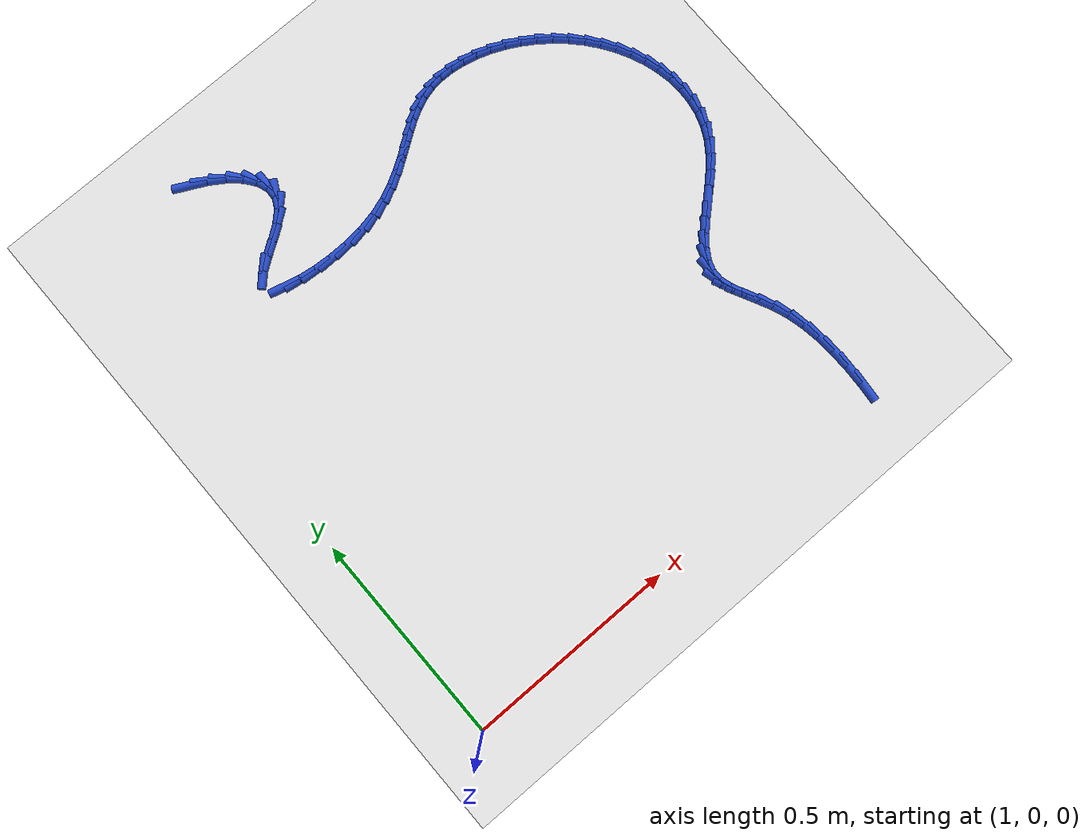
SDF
<sdf version="1.6">
 <world name="default">
  <model name="ground_plane">
   <static>1</static>
   <link name="link">
    <collision name="collision">
     <geometry><plane><normal>0 0 1</normal><size>100 100</size></plane></geometry>
     <surface><friction><ode><mu>100</mu><mu2>50</mu2></ode></friction></surface>
    </collision>
    <visual name="visual">
     <cast_shadows>0</cast_shadows>
     <geometry><plane><normal>0 0 1</normal><size>100 100</size></plane></geometry>
     <material>
      <script><uri>file://media/materials/scripts/gazebo.material</uri><name>Gazebo/WhiteGlow</name></script>
     </material>
    </visual>
   </link>
  </model>
  <model name="line">
   <link name="link_66">
    <pose>1.268315445558432 1.3236131255288703 0.01 0 1.57 -0.4637221920028351</pose>
    <collision name="collision">
     <geometry><cylinder><radius>0.01</radius><length>0.08</length></cylinder></geometry>
    </collision>
    <visual name="visual">
     <material>
      <script><name>Gazebo/Blue</name><uri>file://media/materials/scripts/gazebo.material</uri></script>
     </material>
     <geometry><cylinder><radius>0.01</radius><length>0.08</length></cylinder></geometry>
    </visual>
   </link>
   <link name="link_67">
    <pose>1.3068979011637158 1.3043183005978736 0.01 0 1.57 -0.5819282211173425</pose>
    <collision name="collision">
     <geometry><cylinder><radius>0.01</radius><length>0.08</length></cylinder></geometry>
    </collision>
    <visual name="visual">
     <material>
      <script><name>Gazebo/Blue</name><uri>file://media/materials/scripts/gazebo.material</uri></script>
     </material>
     <geometry><cylinder><radius>0.01</radius><length>0.08</length></cylinder></geometry>
    </visual>
   </link>
   <link name="link_68">
    <pose>1.3408913819317683 1.2819530432261421 0.01 0 1.57 -0.7256255597616942</pose>
    <collision name="collision">
     <geometry><cylinder><radius>0.01</radius><length>0.08</length></cylinder></geometry>
    </collision>
    <visual name="visual">
     <material>
      <script><name>Gazebo/Blue</name><uri>file://media/materials/scripts/gazebo.material</uri></script>
     </material>
     <geometry><cylinder><radius>0.01</radius><length>0.08</length></cylinder></geometry>
    </visual>
   </link>
   <link name="link_69">
    <pose>1.368651575350882 1.2573277982209072 0.01 0 1.57 -0.9193293286810896</pose>
    <collision name="collision">
     <geometry><cylinder><radius>0.01</radius><length>0.08</length></cylinder></geometry>
    </collision>
    <visual name="visual">
     <material>
      <script><name>Gazebo/Blue</name><uri>file://media/materials/scripts/gazebo.material</uri></script>
     </material>
     <geometry><cylinder><radius>0.01</radius><length>0.08</length></cylinder></geometry>
    </visual>
   </link>
   <link name="link_70">
    <pose>1.3885341689093513 1.2312530103893997 0.01 0 1.57 -1.2008175109434216</pose>
    <collision name="collision">
     <geometry><cylinder><radius>0.01</radius><length>0.08</length></cylinder></geometry>
    </collision>
    <visual name="visual">
     <material>
      <script><name>Gazebo/Blue</name><uri>file://media/materials/scripts/gazebo.material</uri></script>
     </material>
     <geometry><cylinder><radius>0.01</radius><length>0.08</length></cylinder></geometry>
    </visual>
   </link>
   <link name="link_71">
    <pose>1.398894850095469 1.2045391245388521 0.01 0 1.57 1.5404564820813893</pose>
    <collision name="collision">
     <geometry><cylinder><radius>0.01</radius><length>0.08</length></cylinder></geometry>
    </collision>
    <visual name="visual">
     <material>
      <script><name>Gazebo/Blue</name><uri>file://media/materials/scripts/gazebo.material</uri></script>
     </material>
     <geometry><cylinder><radius>0.01</radius><length>0.08</length></cylinder></geometry>
    </visual>
   </link>
   <link name="link_72">
    <pose>1.3980893063975288 1.177996585476495 0.01 0 1.57 1.0839216833575656</pose>
    <collision name="collision">
     <geometry><cylinder><radius>0.01</radius><length>0.08</length></cylinder></geometry>
    </collision>
    <visual name="visual">
     <material>
      <script><name>Gazebo/Blue</name><uri>file://media/materials/scripts/gazebo.material</uri></script>
     </material>
     <geometry><cylinder><radius>0.01</radius><length>0.08</length></cylinder></geometry>
    </visual>
   </link>
   <link name="link_73">
    <pose>1.3845534648951567 1.1524273644816105 0.01 0 1.57 0.7698544340722336</pose>
    <collision name="collision">
     <geometry><cylinder><radius>0.01</radius><length>0.08</length></cylinder></geometry>
    </collision>
    <visual name="visual">
     <material>
      <script><name>Gazebo/Blue</name><uri>file://media/materials/scripts/gazebo.material</uri></script>
     </material>
     <geometry><cylinder><radius>0.01</radius><length>0.08</length></cylinder></geometry>
    </visual>
   </link>
   <link name="link_74">
    <pose>1.3596854088271464 1.128320620759216 0.01 0 1.57 0.6282810121195611</pose>
    <collision name="collision">
     <geometry><cylinder><radius>0.01</radius><length>0.08</length></cylinder></geometry>
    </collision>
    <visual name="visual">
     <material>
      <script><name>Gazebo/Blue</name><uri>file://media/materials/scripts/gazebo.material</uri></script>
     </material>
     <geometry><cylinder><radius>0.01</radius><length>0.08</length></cylinder></geometry>
    </visual>
   </link>
   <link name="link_75">
    <pose>1.3286426397932507 1.1057685082950444 0.01 0 1.57 0.5818702681730475</pose>
    <collision name="collision">
     <geometry><cylinder><radius>0.01</radius><length>0.08</length></cylinder></geometry>
    </collision>
    <visual name="visual">
     <material>
      <script><name>Gazebo/Blue</name><uri>file://media/materials/scripts/gazebo.material</uri></script>
     </material>
     <geometry><cylinder><radius>0.01</radius><length>0.08</length></cylinder></geometry>
    </visual>
   </link>
   <link name="link_76">
    <pose>1.2968251964004343 1.0848375684804066 0.01 0 1.57 0.6158601635645772</pose>
    <collision name="collision">
     <geometry><cylinder><radius>0.01</radius><length>0.08</length></cylinder></geometry>
    </collision>
    <visual name="visual">
     <material>
      <script><name>Gazebo/Blue</name><uri>file://media/materials/scripts/gazebo.material</uri></script>
     </material>
     <geometry><cylinder><radius>0.01</radius><length>0.08</length></cylinder></geometry>
    </visual>
   </link>
   <link name="link_77">
    <pose>1.2696331172556623 1.0655943427066161 0.01 0 1.57 0.7946977954095454</pose>
    <collision name="collision">
     <geometry><cylinder><radius>0.01</radius><length>0.08</length></cylinder></geometry>
    </collision>
    <visual name="visual">
     <material>
      <script><name>Gazebo/Blue</name><uri>file://media/materials/scripts/gazebo.material</uri></script>
     </material>
     <geometry><cylinder><radius>0.01</radius><length>0.08</length></cylinder></geometry>
    </visual>
   </link>
   <link name="link_81">
    <pose>1.2867881492627735 1.0075640627421238 0.01 0 1.57 -0.2519943361886863</pose>
    <collision name="collision">
     <geometry><cylinder><radius>0.01</radius><length>0.08</length></cylinder></geometry>
    </collision>
    <visual name="visual">
     <material>
      <script><name>Gazebo/Blue</name><uri>file://media/materials/scripts/gazebo.material</uri></script>
     </material>
     <geometry><cylinder><radius>0.01</radius><length>0.08</length></cylinder></geometry>
    </visual>
   </link>
   <link name="link_82">
    <pose>1.3205259232640507 0.9988776867226582 0.01 0 1.57 -0.14263637030431697</pose>
    <collision name="collision">
     <geometry><cylinder><radius>0.01</radius><length>0.08</length></cylinder></geometry>
    </collision>
    <visual name="visual">
     <material>
      <script><name>Gazebo/Blue</name><uri>file://media/materials/scripts/gazebo.material</uri></script>
     </material>
     <geometry><cylinder><radius>0.01</radius><length>0.08</length></cylinder></geometry>
    </visual>
   </link>
   <link name="link_83">
    <pose>1.361012166989997 0.9930633914120724 0.01 0 1.57 -0.0597396892860879</pose>
    <collision name="collision">
     <geometry><cylinder><radius>0.01</radius><length>0.08</length></cylinder></geometry>
    </collision>
    <visual name="visual">
     <material>
      <script><name>Gazebo/Blue</name><uri>file://media/materials/scripts/gazebo.material</uri></script>
     </material>
     <geometry><cylinder><radius>0.01</radius><length>0.08</length></cylinder></geometry>
    </visual>
   </link>
   <link name="link_84">
    <pose>1.4056050601622758 0.9903962522185646 0.01 0 1.57 0.016393009757000095</pose>
    <collision name="collision">
     <geometry><cylinder><radius>0.01</radius><length>0.08</length></cylinder></geometry>
    </collision>
    <visual name="visual">
     <material>
      <script><name>Gazebo/Blue</name><uri>file://media/materials/scripts/gazebo.material</uri></script>
     </material>
     <geometry><cylinder><radius>0.01</radius><length>0.08</length></cylinder></geometry>
    </visual>
   </link>
   <link name="link_85">
    <pose>1.4516627825025488 0.9911513445503334 0.01 0 1.57 0.0988816015030931</pose>
    <collision name="collision">
     <geometry><cylinder><radius>0.01</radius><length>0.08</length></cylinder></geometry>
    </collision>
    <visual name="visual">
     <material>
      <script><name>Gazebo/Blue</name><uri>file://media/materials/scripts/gazebo.material</uri></script>
     </material>
     <geometry><cylinder><radius>0.01</radius><length>0.08</length></cylinder></geometry>
    </visual>
   </link>
   <link name="link_86">
    <pose>1.4965435137324767 0.9956037438155763 0.01 0 1.57 0.2004462957611341</pose>
    <collision name="collision">
     <geometry><cylinder><radius>0.01</radius><length>0.08</length></cylinder></geometry>
    </collision>
    <visual name="visual">
     <material>
      <script><name>Gazebo/Blue</name><uri>file://media/materials/scripts/gazebo.material</uri></script>
     </material>
     <geometry><cylinder><radius>0.01</radius><length>0.08</length></cylinder></geometry>
    </visual>
   </link>
   <link name="link_87">
    <pose>1.5377599302421672 1.0039778773794323 0.01 0 1.57 0.31179258984498887</pose>
    <collision name="collision">
     <geometry><cylinder><radius>0.01</radius><length>0.08</length></cylinder></geometry>
    </collision>
    <visual name="visual">
     <material>
      <script><name>Gazebo/Blue</name><uri>file://media/materials/scripts/gazebo.material</uri></script>
     </material>
     <geometry><cylinder><radius>0.01</radius><length>0.08</length></cylinder></geometry>
    </visual>
   </link>
   <link name="link_88">
    <pose>1.5746993081623022 1.0158836298512786 0.01 0 1.57 0.4141879503711819</pose>
    <collision name="collision">
     <geometry><cylinder><radius>0.01</radius><length>0.08</length></cylinder></geometry>
    </collision>
    <visual name="visual">
     <material>
      <script><name>Gazebo/Blue</name><uri>file://media/materials/scripts/gazebo.material</uri></script>
     </material>
     <geometry><cylinder><radius>0.01</radius><length>0.08</length></cylinder></geometry>
    </visual>
   </link>
   <link name="link_89">
    <pose>1.6079967304472629 1.0305218221734653 0.01 0 1.57 0.5000991452439469</pose>
    <collision name="collision">
     <geometry><cylinder><radius>0.01</radius><length>0.08</length></cylinder></geometry>
    </collision>
    <visual name="visual">
     <material>
      <script><name>Gazebo/Blue</name><uri>file://media/materials/scripts/gazebo.material</uri></script>
     </material>
     <geometry><cylinder><radius>0.01</radius><length>0.08</length></cylinder></geometry>
    </visual>
   </link>
   <link name="link_90">
    <pose>1.638309871555794 1.0470858692031677 0.01 0 1.57 0.5635106344699347</pose>
    <collision name="collision">
     <geometry><cylinder><radius>0.01</radius><length>0.08</length></cylinder></geometry>
    </collision>
    <visual name="visual">
     <material>
      <script><name>Gazebo/Blue</name><uri>file://media/materials/scripts/gazebo.material</uri></script>
     </material>
     <geometry><cylinder><radius>0.01</radius><length>0.08</length></cylinder></geometry>
    </visual>
   </link>
   <link name="link_91">
    <pose>1.6662964059466396 1.0647691857975607 0.01 0 1.57 0.5997711762129371</pose>
    <collision name="collision">
     <geometry><cylinder><radius>0.01</radius><length>0.08</length></cylinder></geometry>
    </collision>
    <visual name="visual">
     <material>
      <script><name>Gazebo/Blue</name><uri>file://media/materials/scripts/gazebo.material</uri></script>
     </material>
     <geometry><cylinder><radius>0.01</radius><length>0.08</length></cylinder></geometry>
    </visual>
   </link>
   <link name="link_92">
    <pose>1.6926140080785428 1.0827651868138186 0.01 0 1.57 0.6050723214096162</pose>
    <collision name="collision">
     <geometry><cylinder><radius>0.01</radius><length>0.08</length></cylinder></geometry>
    </collision>
    <visual name="visual">
     <material>
      <script><name>Gazebo/Blue</name><uri>file://media/materials/scripts/gazebo.material</uri></script>
     </material>
     <geometry><cylinder><radius>0.01</radius><length>0.08</length></cylinder></geometry>
    </visual>
   </link>
   <link name="link_93">
    <pose>1.7179203524102475 1.1002672871091161 0.01 0 1.57 0.5758769592572621</pose>
    <collision name="collision">
     <geometry><cylinder><radius>0.01</radius><length>0.08</length></cylinder></geometry>
    </collision>
    <visual name="visual">
     <material>
      <script><name>Gazebo/Blue</name><uri>file://media/materials/scripts/gazebo.material</uri></script>
     </material>
     <geometry><cylinder><radius>0.01</radius><length>0.08</length></cylinder></geometry>
    </visual>
   </link>
   <link name="link_94">
    <pose>1.7428731134004984 1.1164689015406282 0.01 0 1.57 0.5090013227703465</pose>
    <collision name="collision">
     <geometry><cylinder><radius>0.01</radius><length>0.08</length></cylinder></geometry>
    </collision>
    <visual name="visual">
     <material>
      <script><name>Gazebo/Blue</name><uri>file://media/materials/scripts/gazebo.material</uri></script>
     </material>
     <geometry><cylinder><radius>0.01</radius><length>0.08</length></cylinder></geometry>
    </visual>
   </link>
   <link name="link_95">
    <pose>1.7681299655080396 1.13056344496553 0.01 0 1.57 0.4030968061179343</pose>
    <collision name="collision">
     <geometry><cylinder><radius>0.01</radius><length>0.08</length></cylinder></geometry>
    </collision>
    <visual name="visual">
     <material>
      <script><name>Gazebo/Blue</name><uri>file://media/materials/scripts/gazebo.material</uri></script>
     </material>
     <geometry><cylinder><radius>0.01</radius><length>0.08</length></cylinder></geometry>
    </visual>
   </link>
   <link name="link_96">
    <pose>1.794348583191614 1.1417443322409953 0.01 0 1.57 0.2628268652581908</pose>
    <collision name="collision">
     <geometry><cylinder><radius>0.01</radius><length>0.08</length></cylinder></geometry>
    </collision>
    <visual name="visual">
     <material>
      <script><name>Gazebo/Blue</name><uri>file://media/materials/scripts/gazebo.material</uri></script>
     </material>
     <geometry><cylinder><radius>0.01</radius><length>0.08</length></cylinder></geometry>
    </visual>
   </link>
   <link name="link_97">
    <pose>1.8221625044064806 1.149227688412663 0.01 0 1.57 0.11746058704161996</pose>
    <collision name="collision">
     <geometry><cylinder><radius>0.01</radius><length>0.08</length></cylinder></geometry>
    </collision>
    <visual name="visual">
     <material>
      <script><name>Gazebo/Blue</name><uri>file://media/materials/scripts/gazebo.material</uri></script>
     </material>
     <geometry><cylinder><radius>0.01</radius><length>0.08</length></cylinder></geometry>
    </visual>
   </link>
   <link name="link_98">
    <pose>1.8516922777382285 1.1527123134617256 0.01 0 1.57 -0.01145474539496722</pose>
    <collision name="collision">
     <geometry><cylinder><radius>0.01</radius><length>0.08</length></cylinder></geometry>
    </collision>
    <visual name="visual">
     <material>
      <script><name>Gazebo/Blue</name><uri>file://media/materials/scripts/gazebo.material</uri></script>
     </material>
     <geometry><cylinder><radius>0.01</radius><length>0.08</length></cylinder></geometry>
    </visual>
   </link>
   <link name="link_99">
    <pose>1.8825678408550832 1.1523586262779215 0.01 0 1.57 -0.12541056644589826</pose>
    <collision name="collision">
     <geometry><cylinder><radius>0.01</radius><length>0.08</length></cylinder></geometry>
    </collision>
    <visual name="visual">
     <material>
      <script><name>Gazebo/Blue</name><uri>file://media/materials/scripts/gazebo.material</uri></script>
     </material>
     <geometry><cylinder><radius>0.01</radius><length>0.08</length></cylinder></geometry>
    </visual>
   </link>
   <link name="link_100">
    <pose>1.91439947340378 1.1483455421074762 0.01 0 1.57 -0.22730016599684458</pose>
    <collision name="collision">
     <geometry><cylinder><radius>0.01</radius><length>0.08</length></cylinder></geometry>
    </collision>
    <visual name="visual">
     <material>
      <script><name>Gazebo/Blue</name><uri>file://media/materials/scripts/gazebo.material</uri></script>
     </material>
     <geometry><cylinder><radius>0.01</radius><length>0.08</length></cylinder></geometry>
    </visual>
   </link>
   <link name="link_101">
    <pose>1.9467974550310518 1.1408519761966176 0.01 0 1.57 -0.3200069610221236</pose>
    <collision name="collision">
     <geometry><cylinder><radius>0.01</radius><length>0.08</length></cylinder></geometry>
    </collision>
    <visual name="visual">
     <material>
      <script><name>Gazebo/Blue</name><uri>file://media/materials/scripts/gazebo.material</uri></script>
     </material>
     <geometry><cylinder><radius>0.01</radius><length>0.08</length></cylinder></geometry>
    </visual>
   </link>
   <link name="link_102">
    <pose>1.9793720653836337 1.1300568437915726 0.01 0 1.57 -0.40615883626947635</pose>
    <collision name="collision">
     <geometry><cylinder><radius>0.01</radius><length>0.08</length></cylinder></geometry>
    </collision>
    <visual name="visual">
     <material>
      <script><name>Gazebo/Blue</name><uri>file://media/materials/scripts/gazebo.material</uri></script>
     </material>
     <geometry><cylinder><radius>0.01</radius><length>0.08</length></cylinder></geometry>
    </visual>
   </link>
   <link name="link_103">
    <pose>2.011733584108259 1.1161390601385681 0.01 0 1.57 -0.4880811461610053</pose>
    <collision name="collision">
     <geometry><cylinder><radius>0.01</radius><length>0.08</length></cylinder></geometry>
    </collision>
    <visual name="visual">
     <material>
      <script><name>Gazebo/Blue</name><uri>file://media/materials/scripts/gazebo.material</uri></script>
     </material>
     <geometry><cylinder><radius>0.01</radius><length>0.08</length></cylinder></geometry>
    </visual>
   </link>
   <link name="link_104">
    <pose>2.0434922908516633 1.0992775404838313 0.01 0 1.57 -0.5678357955456085</pose>
    <collision name="collision">
     <geometry><cylinder><radius>0.01</radius><length>0.08</length></cylinder></geometry>
    </collision>
    <visual name="visual">
     <material>
      <script><name>Gazebo/Blue</name><uri>file://media/materials/scripts/gazebo.material</uri></script>
     </material>
     <geometry><cylinder><radius>0.01</radius><length>0.08</length></cylinder></geometry>
    </visual>
   </link>
   <link name="link_105">
    <pose>2.0742584652605793 1.079651200073589 0.01 0 1.57 -0.6472867742384208</pose>
    <collision name="collision">
     <geometry><cylinder><radius>0.01</radius><length>0.08</length></cylinder></geometry>
    </collision>
    <visual name="visual">
     <material>
      <script><name>Gazebo/Blue</name><uri>file://media/materials/scripts/gazebo.material</uri></script>
     </material>
     <geometry><cylinder><radius>0.01</radius><length>0.08</length></cylinder></geometry>
    </visual>
   </link>
   <link name="link_106">
    <pose>2.1036423869817416 1.0574389541540683 0.01 0 1.57 -0.7281633156474546</pose>
    <collision name="collision">
     <geometry><cylinder><radius>0.01</radius><length>0.08</length></cylinder></geometry>
    </collision>
    <visual name="visual">
     <material>
      <script><name>Gazebo/Blue</name><uri>file://media/materials/scripts/gazebo.material</uri></script>
     </material>
     <geometry><cylinder><radius>0.01</radius><length>0.08</length></cylinder></geometry>
    </visual>
   </link>
   <link name="link_107">
    <pose>2.131254335661884 1.032819717971496 0.01 0 1.57 -0.8121054048450738</pose>
    <collision name="collision">
     <geometry><cylinder><radius>0.01</radius><length>0.08</length></cylinder></geometry>
    </collision>
    <visual name="visual">
     <material>
      <script><name>Gazebo/Blue</name><uri>file://media/materials/scripts/gazebo.material</uri></script>
     </material>
     <geometry><cylinder><radius>0.01</radius><length>0.08</length></cylinder></geometry>
    </visual>
   </link>
   <link name="link_108">
    <pose>2.156704590947741 1.0059724067720994 0.01 0 1.57 -0.8997686171539325</pose>
    <collision name="collision">
     <geometry><cylinder><radius>0.01</radius><length>0.08</length></cylinder></geometry>
    </collision>
    <visual name="visual">
     <material>
      <script><name>Gazebo/Blue</name><uri>file://media/materials/scripts/gazebo.material</uri></script>
     </material>
     <geometry><cylinder><radius>0.01</radius><length>0.08</length></cylinder></geometry>
    </visual>
   </link>
   <link name="link_109">
    <pose>2.1796264307226885 0.9771009840395171 0.01 0 1.57 -0.9886819838839768</pose>
    <collision name="collision">
     <geometry><cylinder><radius>0.01</radius><length>0.08</length></cylinder></geometry>
    </collision>
    <visual name="visual">
     <material>
      <script><name>Gazebo/Blue</name><uri>file://media/materials/scripts/gazebo.material</uri></script>
     </material>
     <geometry><cylinder><radius>0.01</radius><length>0.08</length></cylinder></geometry>
    </visual>
   </link>
   <link name="link_110">
    <pose>2.1997546684463254 0.9465199994409623 0.01 0 1.57 -1.079381099364196</pose>
    <collision name="collision">
     <geometry><cylinder><radius>0.01</radius><length>0.08</length></cylinder></geometry>
    </collision>
    <visual name="visual">
     <material>
      <script><name>Gazebo/Blue</name><uri>file://media/materials/scripts/gazebo.material</uri></script>
     </material>
     <geometry><cylinder><radius>0.01</radius><length>0.08</length></cylinder></geometry>
    </visual>
   </link>
   <link name="link_111">
    <pose>2.2168521295132746 0.9145745114869879 0.01 0 1.57 -1.1735748171066984</pose>
    <collision name="collision">
     <geometry><cylinder><radius>0.01</radius><length>0.08</length></cylinder></geometry>
    </collision>
    <visual name="visual">
     <material>
      <script><name>Gazebo/Blue</name><uri>file://media/materials/scripts/gazebo.material</uri></script>
     </material>
     <geometry><cylinder><radius>0.01</radius><length>0.08</length></cylinder></geometry>
    </visual>
   </link>
   <link name="link_112">
    <pose>2.2306816402217815 0.8816095796723166 0.01 0 1.57 -1.2730082854784632</pose>
    <collision name="collision">
     <geometry><cylinder><radius>0.01</radius><length>0.08</length></cylinder></geometry>
    </collision>
    <visual name="visual">
     <material>
      <script><name>Gazebo/Blue</name><uri>file://media/materials/scripts/gazebo.material</uri></script>
     </material>
     <geometry><cylinder><radius>0.01</radius><length>0.08</length></cylinder></geometry>
    </visual>
   </link>
   <link name="link_113">
    <pose>2.2410060268700915 0.8479702634916713 0.01 0 1.57 -1.3793986820152717</pose>
    <collision name="collision">
     <geometry><cylinder><radius>0.01</radius><length>0.08</length></cylinder></geometry>
    </collision>
    <visual name="visual">
     <material>
      <script><name>Gazebo/Blue</name><uri>file://media/materials/scripts/gazebo.material</uri></script>
     </material>
     <geometry><cylinder><radius>0.01</radius><length>0.08</length></cylinder></geometry>
    </visual>
   </link>
   <link name="link_114">
    <pose>2.247588115756451 0.8140016224397759 0.01 0 1.57 -1.4942921889063472</pose>
    <collision name="collision">
     <geometry><cylinder><radius>0.01</radius><length>0.08</length></cylinder></geometry>
    </collision>
    <visual name="visual">
     <material>
      <script><name>Gazebo/Blue</name><uri>file://media/materials/scripts/gazebo.material</uri></script>
     </material>
     <geometry><cylinder><radius>0.01</radius><length>0.08</length></cylinder></geometry>
    </visual>
   </link>
   <link name="link_115">
    <pose>2.2501907331791036 0.7800487160113532 0.01 0 1.57 1.5227854306311022</pose>
    <collision name="collision">
     <geometry><cylinder><radius>0.01</radius><length>0.08</length></cylinder></geometry>
    </collision>
    <visual name="visual">
     <material>
      <script><name>Gazebo/Blue</name><uri>file://media/materials/scripts/gazebo.material</uri></script>
     </material>
     <geometry><cylinder><radius>0.01</radius><length>0.08</length></cylinder></geometry>
    </visual>
   </link>
   <link name="link_116">
    <pose>2.2485767054362964 0.7464566037011263 0.01 0 1.57 1.3883382980304915</pose>
    <collision name="collision">
     <geometry><cylinder><radius>0.01</radius><length>0.08</length></cylinder></geometry>
    </collision>
    <visual name="visual">
     <material>
      <script><name>Gazebo/Blue</name><uri>file://media/materials/scripts/gazebo.material</uri></script>
     </material>
     <geometry><cylinder><radius>0.01</radius><length>0.08</length></cylinder></geometry>
    </visual>
   </link>
   <link name="link_117">
    <pose>2.2425088588262736 0.7135703450038176 0.01 0 1.57 1.2448941709521444</pose>
    <collision name="collision">
     <geometry><cylinder><radius>0.01</radius><length>0.08</length></cylinder></geometry>
    </collision>
    <visual name="visual">
     <material>
      <script><name>Gazebo/Blue</name><uri>file://media/materials/scripts/gazebo.material</uri></script>
     </material>
     <geometry><cylinder><radius>0.01</radius><length>0.08</length></cylinder></geometry>
    </visual>
   </link>
   <link name="link_118">
    <pose>2.231750019647282 0.6817349994141515 0.01 0 1.57 1.0949423268792617</pose>
    <collision name="collision">
     <geometry><cylinder><radius>0.01</radius><length>0.08</length></cylinder></geometry>
    </collision>
    <visual name="visual">
     <material>
      <script><name>Gazebo/Blue</name><uri>file://media/materials/scripts/gazebo.material</uri></script>
     </material>
     <geometry><cylinder><radius>0.01</radius><length>0.08</length></cylinder></geometry>
    </visual>
   </link>
   <link name="link_119">
    <pose>2.216063014197566 0.6512956264268503 0.01 0 1.57 0.9493796589996913</pose>
    <collision name="collision">
     <geometry><cylinder><radius>0.01</radius><length>0.08</length></cylinder></geometry>
    </collision>
    <visual name="visual">
     <material>
      <script><name>Gazebo/Blue</name><uri>file://media/materials/scripts/gazebo.material</uri></script>
     </material>
     <geometry><cylinder><radius>0.01</radius><length>0.08</length></cylinder></geometry>
    </visual>
   </link>
   <link name="link_120">
    <pose>2.195451521799041 0.6225106307131065 0.01 0 1.57 0.8417167074680948</pose>
    <collision name="collision">
     <geometry><cylinder><radius>0.01</radius><length>0.08</length></cylinder></geometry>
    </collision>
    <visual name="visual">
     <material>
      <script><name>Gazebo/Blue</name><uri>file://media/materials/scripts/gazebo.material</uri></script>
     </material>
     <geometry><cylinder><radius>0.01</radius><length>0.08</length></cylinder></geometry>
    </visual>
   </link>
   <link name="link_121">
    <pose>2.1710758825531684 0.5952222700583093 0.01 0 1.57 0.7748038258438735</pose>
    <collision name="collision">
     <geometry><cylinder><radius>0.01</radius><length>0.08</length></cylinder></geometry>
    </collision>
    <visual name="visual">
     <material>
      <script><name>Gazebo/Blue</name><uri>file://media/materials/scripts/gazebo.material</uri></script>
     </material>
     <geometry><cylinder><radius>0.01</radius><length>0.08</length></cylinder></geometry>
    </visual>
   </link>
   <link name="link_122">
    <pose>2.1444432291681492 0.5691480321632498 0.01 0 1.57 0.7427811769972364</pose>
    <collision name="collision">
     <geometry><cylinder><radius>0.01</radius><length>0.08</length></cylinder></geometry>
    </collision>
    <visual name="visual">
     <material>
      <script><name>Gazebo/Blue</name><uri>file://media/materials/scripts/gazebo.material</uri></script>
     </material>
     <geometry><cylinder><radius>0.01</radius><length>0.08</length></cylinder></geometry>
    </visual>
   </link>
   <link name="link_123">
    <pose>2.117060759718231 0.5440053812111277 0.01 0 1.57 0.7437254654328168</pose>
    <collision name="collision">
     <geometry><cylinder><radius>0.01</radius><length>0.08</length></cylinder></geometry>
    </collision>
    <visual name="visual">
     <material>
      <script><name>Gazebo/Blue</name><uri>file://media/materials/scripts/gazebo.material</uri></script>
     </material>
     <geometry><cylinder><radius>0.01</radius><length>0.08</length></cylinder></geometry>
    </visual>
   </link>
   <link name="link_124">
    <pose>2.0904356722776614 0.5195117813851421 0.01 0 1.57 0.7805841268963324</pose>
    <collision name="collision">
     <geometry><cylinder><radius>0.01</radius><length>0.08</length></cylinder></geometry>
    </collision>
    <visual name="visual">
     <material>
      <script><name>Gazebo/Blue</name><uri>file://media/materials/scripts/gazebo.material</uri></script>
     </material>
     <geometry><cylinder><radius>0.01</radius><length>0.08</length></cylinder></geometry>
    </visual>
   </link>
   <link name="link_125">
    <pose>2.06607516492069 0.4953846968684918 0.01 0 1.57 0.8626413009532262</pose>
    <collision name="collision">
     <geometry><cylinder><radius>0.01</radius><length>0.08</length></cylinder></geometry>
    </collision>
    <visual name="visual">
     <material>
      <script><name>Gazebo/Blue</name><uri>file://media/materials/scripts/gazebo.material</uri></script>
     </material>
     <geometry><cylinder><radius>0.01</radius><length>0.08</length></cylinder></geometry>
    </visual>
   </link>
   <link name="link_126">
    <pose>2.045486435721564 0.47134159184437524 0.01 0 1.57 1.0075027715138236</pose>
    <collision name="collision">
     <geometry><cylinder><radius>0.01</radius><length>0.08</length></cylinder></geometry>
    </collision>
    <visual name="visual">
     <material>
      <script><name>Gazebo/Blue</name><uri>file://media/materials/scripts/gazebo.material</uri></script>
     </material>
     <geometry><cylinder><radius>0.01</radius><length>0.08</length></cylinder></geometry>
    </visual>
   </link>
   <link name="link_127">
    <pose>2.030176682754532 0.4470999304959925 0.01 0 1.57 1.238791401725665</pose>
    <collision name="collision">
     <geometry><cylinder><radius>0.01</radius><length>0.08</length></cylinder></geometry>
    </collision>
    <visual name="visual">
     <material>
      <script><name>Gazebo/Blue</name><uri>file://media/materials/scripts/gazebo.material</uri></script>
     </material>
     <geometry><cylinder><radius>0.01</radius><length>0.08</length></cylinder></geometry>
    </visual>
   </link>
   <link name="link_128">
    <pose>2.0216531040938417 0.42237717700654226 0.01 0 1.57 1.5591427864665142</pose>
    <collision name="collision">
     <geometry><cylinder><radius>0.01</radius><length>0.08</length></cylinder></geometry>
    </collision>
    <visual name="visual">
     <material>
      <script><name>Gazebo/Blue</name><uri>file://media/materials/scripts/gazebo.material</uri></script>
     </material>
     <geometry><cylinder><radius>0.01</radius><length>0.08</length></cylinder></geometry>
    </visual>
   </link>
   <link name="link_129">
    <pose>2.0213560381104236 0.3968868515566318 0.01 0 1.57 -1.2954105717152886</pose>
    <collision name="collision">
     <geometry><cylinder><radius>0.01</radius><length>0.08</length></cylinder></geometry>
    </collision>
    <visual name="visual">
     <material>
      <script><name>Gazebo/Blue</name><uri>file://media/materials/scripts/gazebo.material</uri></script>
     </material>
     <geometry><cylinder><radius>0.01</radius><length>0.08</length></cylinder></geometry>
    </visual>
   </link>
   <link name="link_130">
    <pose>2.0288872001007143 0.37023401536263784 0.01 0 1.57 -1.1423896846225305</pose>
    <collision name="collision">
     <geometry><cylinder><radius>0.01</radius><length>0.08</length></cylinder></geometry>
    </collision>
    <visual name="visual">
     <material>
      <script><name>Gazebo/Blue</name><uri>file://media/materials/scripts/gazebo.material</uri></script>
     </material>
     <geometry><cylinder><radius>0.01</radius><length>0.08</length></cylinder></geometry>
    </visual>
   </link>
   <link name="link_131">
    <pose>2.0418251698470633 0.34190438642948684 0.01 0 1.57 -1.0926824161605242</pose>
    <collision name="collision">
     <geometry><cylinder><radius>0.01</radius><length>0.08</length></cylinder></geometry>
    </collision>
    <visual name="visual">
     <material>
      <script><name>Gazebo/Blue</name><uri>file://media/materials/scripts/gazebo.material</uri></script>
     </material>
     <geometry><cylinder><radius>0.01</radius><length>0.08</length></cylinder></geometry>
    </visual>
   </link>
   <link name="link_132">
    <pose>2.057644659112671 0.31137755566736336 0.01 0 1.57 -1.1179509935902188</pose>
    <collision name="collision">
     <geometry><cylinder><radius>0.01</radius><length>0.08</length></cylinder></geometry>
    </collision>
    <visual name="visual">
     <material>
      <script><name>Gazebo/Blue</name><uri>file://media/materials/scripts/gazebo.material</uri></script>
     </material>
     <geometry><cylinder><radius>0.01</radius><length>0.08</length></cylinder></geometry>
    </visual>
   </link>
   <link name="link_133">
    <pose>2.0738203796607375 0.27813311398645085 0.01 0 1.57 -1.204006959652332</pose>
    <collision name="collision">
     <geometry><cylinder><radius>0.01</radius><length>0.08</length></cylinder></geometry>
    </collision>
    <visual name="visual">
     <material>
      <script><name>Gazebo/Blue</name><uri>file://media/materials/scripts/gazebo.material</uri></script>
     </material>
     <geometry><cylinder><radius>0.01</radius><length>0.08</length></cylinder></geometry>
    </visual>
   </link>
   <link name="link_134">
    <pose>2.087834949390628 0.24165337892121883 0.01 0 1.57 -1.3195319340327634</pose>
    <collision name="collision">
     <geometry><cylinder><radius>0.01</radius><length>0.08</length></cylinder></geometry>
    </collision>
    <visual name="visual">
     <material>
      <script><name>Gazebo/Blue</name><uri>file://media/materials/scripts/gazebo.material</uri></script>
     </material>
     <geometry><cylinder><radius>0.01</radius><length>0.08</length></cylinder></geometry>
    </visual>
   </link>
   <link name="link_135">
    <pose>2.0980816355396708 0.20173472768705578 0.01 0 1.57 -1.417980880519993</pose>
    <collision name="collision">
     <geometry><cylinder><radius>0.01</radius><length>0.08</length></cylinder></geometry>
    </collision>
    <visual name="visual">
     <material>
      <script><name>Gazebo/Blue</name><uri>file://media/materials/scripts/gazebo.material</uri></script>
     </material>
     <geometry><cylinder><radius>0.01</radius><length>0.08</length></cylinder></geometry>
    </visual>
   </link>
   <link name="link_136">
    <pose>2.1046981086917564 0.1587751376274967 0.01 0 1.57 -1.4979913702296268</pose>
    <collision name="collision">
     <geometry><cylinder><radius>0.01</radius><length>0.08</length></cylinder></geometry>
    </collision>
    <visual name="visual">
     <material>
      <script><name>Gazebo/Blue</name><uri>file://media/materials/scripts/gazebo.material</uri></script>
     </material>
     <geometry><cylinder><radius>0.01</radius><length>0.08</length></cylinder></geometry>
    </visual>
   </link>
   <link name="link_137">
    <pose>2.108019121838399 0.11324055477113588 0.01 0 1.57 -1.5632339461169102</pose>
    <collision name="collision">
     <geometry><cylinder><radius>0.01</radius><length>0.08</length></cylinder></geometry>
    </collision>
    <visual name="visual">
     <material>
      <script><name>Gazebo/Blue</name><uri>file://media/materials/scripts/gazebo.material</uri></script>
     </material>
     <geometry><cylinder><radius>0.01</radius><length>0.08</length></cylinder></geometry>
    </visual>
   </link>
   <link name="link_138">
    <pose>2.108379427971115 0.06559692514656856 0.01 0 1.57 1.5248599453609406</pose>
    <collision name="collision">
     <geometry><cylinder><radius>0.01</radius><length>0.08</length></cylinder></geometry>
    </collision>
    <visual name="visual">
     <material>
      <script><name>Gazebo/Blue</name><uri>file://media/materials/scripts/gazebo.material</uri></script>
     </material>
     <geometry><cylinder><radius>0.01</radius><length>0.08</length></cylinder></geometry>
    </visual>
   </link>
   <link name="link_139">
    <pose>2.1061137800814183 0.01631019478238969 0.01 0 1.57 1.4807413553618636</pose>
    <collision name="collision">
     <geometry><cylinder><radius>0.01</radius><length>0.08</length></cylinder></geometry>
    </collision>
    <visual name="visual">
     <material>
      <script><name>Gazebo/Blue</name><uri>file://media/materials/scripts/gazebo.material</uri></script>
     </material>
     <geometry><cylinder><radius>0.01</radius><length>0.08</length></cylinder></geometry>
    </visual>
   </link>
  </model>
 </world>
</sdf>
